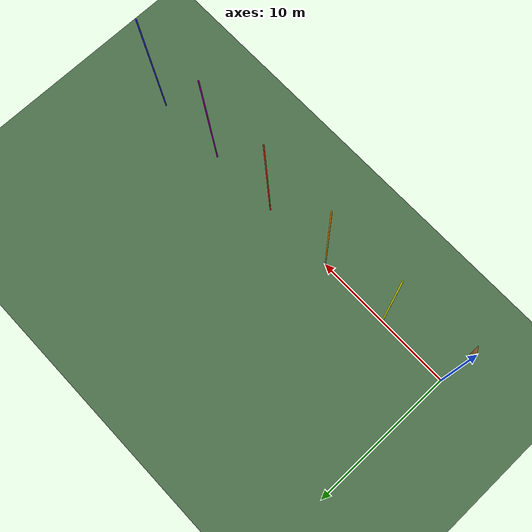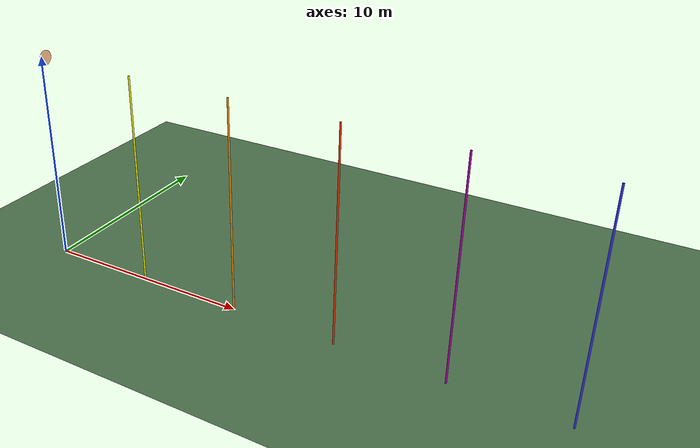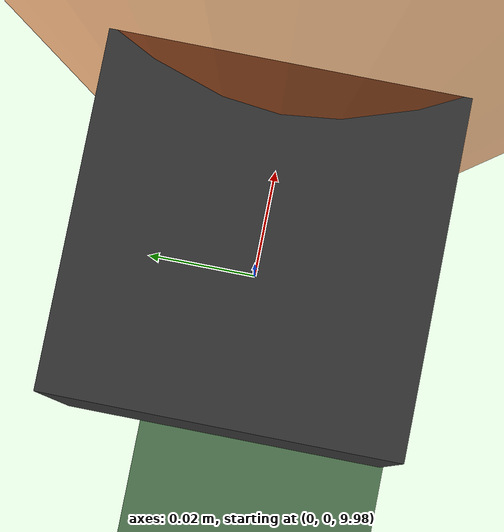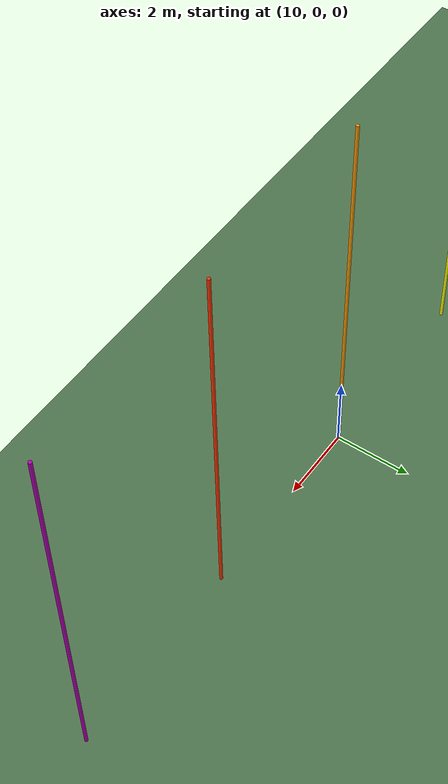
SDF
<?xml version="1.0" ?>
<sdf version="1.9">
  <world name="net_ballistics">
    <physics name="1ms" type="ignore">
      <max_step_size>0.001</max_step_size>
      <real_time_factor>1.0</real_time_factor>
    </physics>

    <plugin filename="gz-sim-physics-system"
      name="gz::sim::systems::Physics">
    </plugin>
    <plugin filename="gz-sim-user-commands-system"
      name="gz::sim::systems::UserCommands">
    </plugin>
    <plugin filename="gz-sim-scene-broadcaster-system"
      name="gz::sim::systems::SceneBroadcaster">
    </plugin>
    <plugin filename="gz-sim-contact-system"
      name="gz::sim::systems::Contact">
    </plugin>
    <plugin filename="gz-sim-apply-link-wrench-system"
      name="gz::sim::systems::ApplyLinkWrench">
    </plugin>

    <gravity>0 0 -9.8</gravity>
    <atmosphere type="adiabatic"/>

    <scene>
      <ambient>0.5 0.5 0.5</ambient>
      <background>0.6 0.7 0.9</background>
      <shadows>false</shadows>
    </scene>

    <light type="directional" name="sun">
      <cast_shadows>false</cast_shadows>
      <pose>0 0 20 0 0 0</pose>
      <diffuse>0.9 0.9 0.9 1</diffuse>
      <direction>-0.5 0.1 -0.9</direction>
    </light>

    <model name="ground_plane">
      <static>true</static>
      <link name="link">
        <collision name="collision">
          <geometry><plane><normal>0 0 1</normal><size>500 500</size></plane></geometry>
        </collision>
        <visual name="visual">
          <geometry><plane><normal>0 0 1</normal><size>500 500</size></plane></geometry>
          <material>
            <ambient>0.3 0.45 0.3 1</ambient>
            <diffuse>0.3 0.45 0.3 1</diffuse>
          </material>
        </visual>
      </link>
    </model>

    <!-- 5 m araliklarla menzil direkleri -->
    <model name="range_markers">
      <static>true</static>
      <link name="link">
        <visual name="m5"><pose>5 0 5 0 0 0</pose>
          <geometry><cylinder><radius>0.04</radius><length>10</length></cylinder></geometry>
          <material><ambient>1 1 0 1</ambient><diffuse>1 1 0 1</diffuse></material></visual>
        <visual name="m10"><pose>10 0 5 0 0 0</pose>
          <geometry><cylinder><radius>0.04</radius><length>10</length></cylinder></geometry>
          <material><ambient>1 0.6 0 1</ambient><diffuse>1 0.6 0 1</diffuse></material></visual>
        <visual name="m15"><pose>15 0 5 0 0 0</pose>
          <geometry><cylinder><radius>0.04</radius><length>10</length></cylinder></geometry>
          <material><ambient>1 0.2 0 1</ambient><diffuse>1 0.2 0 1</diffuse></material></visual>
        <visual name="m20"><pose>20 0 5 0 0 0</pose>
          <geometry><cylinder><radius>0.04</radius><length>10</length></cylinder></geometry>
          <material><ambient>0.7 0 0.7 1</ambient><diffuse>0.7 0 0.7 1</diffuse></material></visual>
        <visual name="m25"><pose>25 0 5 0 0 0</pose>
          <geometry><cylinder><radius>0.04</radius><length>10</length></cylinder></geometry>
          <material><ambient>0.2 0.2 1 1</ambient><diffuse>0.2 0.2 1 1</diffuse></material></visual>
      </link>
    </model>

    <model name="net_anchor">
      <static>true</static>
      <pose>0 0 10 0 0 0</pose>
      <link name="anchor_link">
        <visual name="anchor_visual">
          <geometry><box><size>0.06 0.06 0.06</size></box></geometry>
          <material><ambient>0.2 0.2 0.2 1</ambient><diffuse>0.2 0.2 0.2 1</diffuse></material>
        </visual>
      </link>

      <plugin filename="NetLauncherPlugin" name="avci::NetLauncherPlugin">
        <muzzle_link>anchor_link</muzzle_link>
        <net_model>net_cone</net_model>
        <net_link>net_link</net_link>
        <fire_topic>/bullet_net_interceptor/net/fire</fire_topic>
        <muzzle_speed>20.0</muzzle_speed>
        <launch_axis>1 0 0</launch_axis>
      </plugin>
    </model>

    <!-- Ag: 10 m yukseklikte, askiya bagli -->
    <include>
      <uri>model://net_cone</uri>
      <name>net_cone</name>
      <pose>0 0 10 0 0 0</pose>
    </include>

  </world>
</sdf>

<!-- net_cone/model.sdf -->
<sdf version="1.9">
  <model name="net_cone">

    <link name="net_link">
      <inertial>
        <mass>0.30</mass>
        <!-- Ince kabuk koni yaklasimi; tam dogru degil ama menzil/balistik
             icin yeterli. Agirlik merkezi agza dogru kayik. -->
        <pose>0.15 0 0 0 0 0</pose>
        <inertia>
          <ixx>0.0012</ixx>
          <ixy>0</ixy>
          <ixz>0</ixz>
          <iyy>0.0009</iyy>
          <iyz>0</iyz>
          <izz>0.0009</izz>
        </inertia>
      </inertial>

      <collision name="net_collision">
        <pose degrees="true">0.125 0 0 0 -90 0</pose>
        <geometry>
          <cone>
            <radius>0.35</radius>
            <length>0.25</length>
          </cone>
        </geometry>
        <surface>
          <contact>
            <ode>
              <!-- Ag yumusak: hedefi sekmeden yakalamali -->
              <max_vel>0.1</max_vel>
              <min_depth>0.005</min_depth>
            </ode>
          </contact>
          <friction>
            <ode>
              <mu>1.5</mu>
              <mu2>1.5</mu2>
            </ode>
          </friction>
        </surface>
      </collision>

      <visual name="net_visual">
        <pose degrees="true">0.125 0 0 0 -90 0</pose>
        <geometry>
          <cone>
            <radius>0.35</radius>
            <length>0.25</length>
          </cone>
        </geometry>
        <material>
          <ambient>0.9 0.35 0.05 0.55</ambient>
          <diffuse>0.9 0.35 0.05 0.55</diffuse>
          <specular>0.1 0.1 0.1 1</specular>
        </material>
        <transparency>0.45</transparency>
      </visual>

      <!-- Yakalama tespiti: NetCapturePlugin bu sensoru dinler -->
      <sensor name="net_contact" type="contact">
        <always_on>true</always_on>
        <!-- Fizik adimiyla ayni hiz: 20 m/s'de 200 Hz ornekleme (5 ms = 10 cm)
             30 cm'lik hedefte temasi kacirabiliyordu. -->
        <update_rate>1000</update_rate>
        <contact>
          <collision>net_collision</collision>
        </contact>
      </sensor>
    </link>

    <plugin filename="gz-sim-lift-drag-system"
      name="gz::sim::systems::LiftDrag">
      <a0>0.0</a0>
      <cla>0.0</cla>
      <cda>0.30</cda>
      <cma>0.0</cma>
      <alpha_stall>1.5708</alpha_stall>
      <cla_stall>0.0</cla_stall>
      <cda_stall>0.30</cda_stall>
      <cma_stall>0.0</cma_stall>
      <cp>0.15 0 0</cp>
      <area>0.10</area>
      <air_density>1.2041</air_density>
      <forward>1 0 0</forward>
      <upward>0 0 1</upward>
      <link_name>net_link</link_name>
    </plugin>

  </model>
</sdf>
